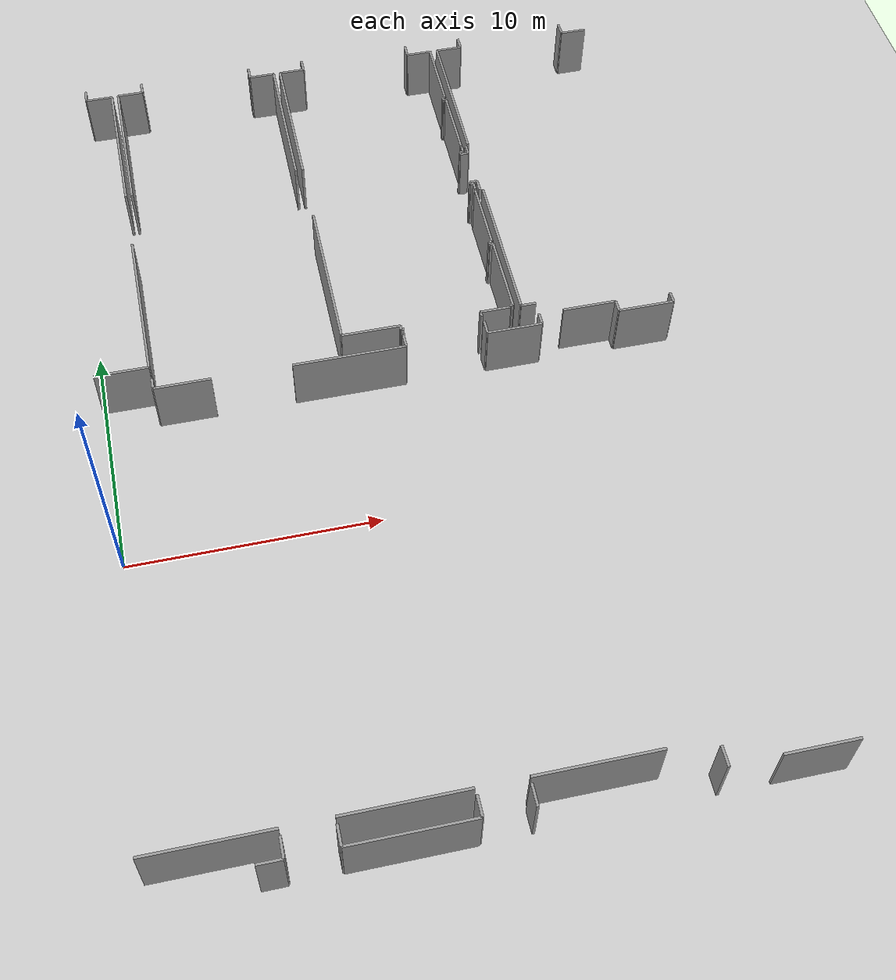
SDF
<sdf version="1.6">
 <world name="default">
  <model name="ground_plane">
   <static>1</static>
   <link name="link">
    <collision name="collision">
     <geometry><plane><normal>0 0 1</normal><size>100 100</size></plane></geometry>
     <surface><friction><ode><mu>100</mu><mu2>50</mu2></ode></friction></surface>
    </collision>
    <visual name="visual">
     <cast_shadows>0</cast_shadows>
     <geometry><plane><normal>0 0 1</normal><size>100 100</size></plane></geometry>
     <material>
      <script><uri>file://media/materials/scripts/gazebo.material</uri><name>Gazebo/Grey</name></script>
     </material>
    </visual>
   </link>
  </model>
  <model name="50045229">
   <static>1</static>
   <link name="Wall_10">
    <collision name="Wall_10_Collision">
     <geometry><box><size>0.32428384673 0.1 2.5</size></box></geometry>
     <pose>0.162141923365 0 1.25 0 0 0</pose>
    </collision>
    <visual name="Wall_10_Visual">
     <pose>0.162141923365 0 1.25 0 0 0</pose>
     <geometry><box><size>0.32428384673 0.1 2.5</size></box></geometry>
     <material>
      <script><uri>file://media/materials/scripts/gazebo.material</uri><name>Gazebo/Grey</name></script>
      <ambient>1 1 1 1</ambient>
     </material>
    </visual>
    <pose>63.8438106842 -7.00643490843 0 0 0 -1.57079632679</pose>
   </link>
   <link name="Wall_11">
    <collision name="Wall_11_Collision">
     <geometry><box><size>0.143928721014 0.1 2.5</size></box></geometry>
     <pose>0.0719643605072 0 1.25 0 0 0</pose>
    </collision>
    <visual name="Wall_11_Visual">
     <pose>0.0719643605072 0 1.25 0 0 0</pose>
     <geometry><box><size>0.143928721014 0.1 2.5</size></box></geometry>
     <material>
      <script><uri>file://media/materials/scripts/gazebo.material</uri><name>Gazebo/Grey</name></script>
      <ambient>1 1 1 1</ambient>
     </material>
    </visual>
    <pose>63.8438106842 -7.33071875516 0 0 0 3.14159265359</pose>
   </link>
   <link name="Wall_12">
    <collision name="Wall_12_Collision">
     <geometry><box><size>0.115117592557 0.1 2.5</size></box></geometry>
     <pose>0.0575587962787 0 1.25 0 0 0</pose>
    </collision>
    <visual name="Wall_12_Visual">
     <pose>0.0575587962787 0 1.25 0 0 0</pose>
     <geometry><box><size>0.115117592557 0.1 2.5</size></box></geometry>
     <material>
      <script><uri>file://media/materials/scripts/gazebo.material</uri><name>Gazebo/Grey</name></script>
      <ambient>1 1 1 1</ambient>
     </material>
    </visual>
    <pose>63.6998819632 -7.33071875516 0 0 0 -1.57079632679</pose>
   </link>
   <link name="Wall_13">
    <collision name="Wall_13_Collision">
     <geometry><box><size>0.345479698943 0.1 2.5</size></box></geometry>
     <pose>0.172739849471 0 1.25 0 0 0</pose>
    </collision>
    <visual name="Wall_13_Visual">
     <pose>0.172739849471 0 1.25 0 0 0</pose>
     <geometry><box><size>0.345479698943 0.1 2.5</size></box></geometry>
     <material>
      <script><uri>file://media/materials/scripts/gazebo.material</uri><name>Gazebo/Grey</name></script>
      <ambient>1 1 1 1</ambient>
     </material>
    </visual>
    <pose>63.6998819632 -7.44583634771 0 0 0 0.0</pose>
   </link>
   <link name="Wall_14">
    <collision name="Wall_14_Collision">
     <geometry><box><size>0.451078196195 0.1 2.5</size></box></geometry>
     <pose>0.225539098097 0 1.25 0 0 0</pose>
    </collision>
    <visual name="Wall_14_Visual">
     <pose>0.225539098097 0 1.25 0 0 0</pose>
     <geometry><box><size>0.451078196195 0.1 2.5</size></box></geometry>
     <material>
      <script><uri>file://media/materials/scripts/gazebo.material</uri><name>Gazebo/Grey</name></script>
      <ambient>1 1 1 1</ambient>
     </material>
    </visual>
    <pose>64.0453616622 -7.44583634771 0 0 0 1.57079632679</pose>
   </link>
   <link name="Wall_21">
    <collision name="Wall_21_Collision">
     <geometry><box><size>0.509461980733 0.1 2.5</size></box></geometry>
     <pose>0.254730990367 0 1.25 0 0 0</pose>
    </collision>
    <visual name="Wall_21_Visual">
     <pose>0.254730990367 0 1.25 0 0 0</pose>
     <geometry><box><size>0.509461980733 0.1 2.5</size></box></geometry>
     <material>
      <script><uri>file://media/materials/scripts/gazebo.material</uri><name>Gazebo/Grey</name></script>
      <ambient>1 1 1 1</ambient>
     </material>
    </visual>
    <pose>64.0317810862 -9.68193529554 0 0 0 1.57079632679</pose>
   </link>
   <link name="Wall_22">
    <collision name="Wall_22_Collision">
     <geometry><box><size>0.311972483469 0.1 2.5</size></box></geometry>
     <pose>0.155986241734 0 1.25 0 0 0</pose>
    </collision>
    <visual name="Wall_22_Visual">
     <pose>0.155986241734 0 1.25 0 0 0</pose>
     <geometry><box><size>0.311972483469 0.1 2.5</size></box></geometry>
     <material>
      <script><uri>file://media/materials/scripts/gazebo.material</uri><name>Gazebo/Grey</name></script>
      <ambient>1 1 1 1</ambient>
     </material>
    </visual>
    <pose>64.0317810862 -9.1724733148 0 0 0 3.14159265359</pose>
   </link>
   <link name="Wall_23">
    <collision name="Wall_23_Collision">
     <geometry><box><size>0.116132962723 0.1 2.5</size></box></geometry>
     <pose>0.0580664813616 0 1.25 0 0 0</pose>
    </collision>
    <visual name="Wall_23_Visual">
     <pose>0.0580664813616 0 1.25 0 0 0</pose>
     <geometry><box><size>0.116132962723 0.1 2.5</size></box></geometry>
     <material>
      <script><uri>file://media/materials/scripts/gazebo.material</uri><name>Gazebo/Grey</name></script>
      <ambient>1 1 1 1</ambient>
     </material>
    </visual>
    <pose>63.7198086027 -9.1724733148 0 0 0 -1.57079632679</pose>
   </link>
   <link name="Wall_24">
    <collision name="Wall_24_Collision">
     <geometry><box><size>0.130601987587 0.1 2.5</size></box></geometry>
     <pose>0.0653009937935 0 1.25 0 0 0</pose>
    </collision>
    <visual name="Wall_24_Visual">
     <pose>0.0653009937935 0 1.25 0 0 0</pose>
     <geometry><box><size>0.130601987587 0.1 2.5</size></box></geometry>
     <material>
      <script><uri>file://media/materials/scripts/gazebo.material</uri><name>Gazebo/Grey</name></script>
      <ambient>1 1 1 1</ambient>
     </material>
    </visual>
    <pose>63.7198086027 -9.28860627753 0 0 0 0.0</pose>
   </link>
   <link name="Wall_25">
    <collision name="Wall_25_Collision">
     <geometry><box><size>0.341037454467 0.1 2.5</size></box></geometry>
     <pose>0.170518727233 0 1.25 0 0 0</pose>
    </collision>
    <visual name="Wall_25_Visual">
     <pose>0.170518727233 0 1.25 0 0 0</pose>
     <geometry><box><size>0.341037454467 0.1 2.5</size></box></geometry>
     <material>
      <script><uri>file://media/materials/scripts/gazebo.material</uri><name>Gazebo/Grey</name></script>
      <ambient>1 1 1 1</ambient>
     </material>
    </visual>
    <pose>63.8504105903 -9.28860627753 0 0 0 -1.57079632679</pose>
   </link>
   <link name="Wall_57">
    <collision name="Wall_57_Collision">
     <geometry><box><size>0.587137798424 0.1 2.5</size></box></geometry>
     <pose>0.293568899212 0 1.25 0 0 0</pose>
    </collision>
    <visual name="Wall_57_Visual">
     <pose>0.293568899212 0 1.25 0 0 0</pose>
     <geometry><box><size>0.587137798424 0.1 2.5</size></box></geometry>
     <material>
      <script><uri>file://media/materials/scripts/gazebo.material</uri><name>Gazebo/Grey</name></script>
      <ambient>1 1 1 1</ambient>
     </material>
    </visual>
    <pose>47.8499536737 -0.0199266395055 0 0 0 -1.57079632679</pose>
   </link>
   <link name="Wall_58">
    <collision name="Wall_58_Collision">
     <geometry><box><size>1.14686060237 0.1 2.5</size></box></geometry>
     <pose>0.573430301184 0 1.25 0 0 0</pose>
    </collision>
    <visual name="Wall_58_Visual">
     <pose>0.573430301184 0 1.25 0 0 0</pose>
     <geometry><box><size>1.14686060237 0.1 2.5</size></box></geometry>
     <material>
      <script><uri>file://media/materials/scripts/gazebo.material</uri><name>Gazebo/Grey</name></script>
      <ambient>1 1 1 1</ambient>
     </material>
    </visual>
    <pose>47.8499536737 -0.607064437929 0 0 0 0.0</pose>
   </link>
   <link name="Wall_59">
    <collision name="Wall_59_Collision">
     <geometry><box><size>6.32312463092 0.1 2.5</size></box></geometry>
     <pose>3.16156231546 0 1.25 0 0 0</pose>
    </collision>
    <visual name="Wall_59_Visual">
     <pose>3.16156231546 0 1.25 0 0 0</pose>
     <geometry><box><size>6.32312463092 0.1 2.5</size></box></geometry>
     <material>
      <script><uri>file://media/materials/scripts/gazebo.material</uri><name>Gazebo/Grey</name></script>
      <ambient>1 1 1 1</ambient>
     </material>
    </visual>
    <pose>48.9968142761 -0.607064437929 0 0 0 -1.56752449439</pose>
   </link>
   <link name="Wall_60">
    <collision name="Wall_60_Collision">
     <geometry><box><size>6.33197527574 0.1 2.5</size></box></geometry>
     <pose>3.16598763787 0 1.25 0 0 0</pose>
    </collision>
    <visual name="Wall_60_Visual">
     <pose>3.16598763787 0 1.25 0 0 0</pose>
     <geometry><box><size>6.33197527574 0.1 2.5</size></box></geometry>
     <material>
      <script><uri>file://media/materials/scripts/gazebo.material</uri><name>Gazebo/Grey</name></script>
      <ambient>1 1 1 1</ambient>
     </material>
    </visual>
    <pose>56.4377006943 -6.93383594157 0 0 0 1.57079632679</pose>
   </link>
   <link name="Wall_61">
    <collision name="Wall_61_Collision">
     <geometry><box><size>1.09444211755 0.1 2.5</size></box></geometry>
     <pose>0.547221058777 0 1.25 0 0 0</pose>
    </collision>
    <visual name="Wall_61_Visual">
     <pose>0.547221058777 0 1.25 0 0 0</pose>
     <geometry><box><size>1.09444211755 0.1 2.5</size></box></geometry>
     <material>
      <script><uri>file://media/materials/scripts/gazebo.material</uri><name>Gazebo/Grey</name></script>
      <ambient>1 1 1 1</ambient>
     </material>
    </visual>
    <pose>56.4377006943 -0.601860665829 0 0 0 3.14159265359</pose>
   </link>
   <link name="Wall_62">
    <collision name="Wall_62_Collision">
     <geometry><box><size>0.575714884057 0.1 2.5</size></box></geometry>
     <pose>0.287857442029 0 1.25 0 0 0</pose>
    </collision>
    <visual name="Wall_62_Visual">
     <pose>0.287857442029 0 1.25 0 0 0</pose>
     <geometry><box><size>0.575714884057 0.1 2.5</size></box></geometry>
     <material>
      <script><uri>file://media/materials/scripts/gazebo.material</uri><name>Gazebo/Grey</name></script>
      <ambient>1 1 1 1</ambient>
     </material>
    </visual>
    <pose>55.3432585767 -0.601860665829 0 0 0 1.57079632679</pose>
   </link>
   <link name="Wall_63">
    <collision name="Wall_63_Collision">
     <geometry><box><size>0.553503661679 0.1 2.5</size></box></geometry>
     <pose>0.276751830839 0 1.25 0 0 0</pose>
    </collision>
    <visual name="Wall_63_Visual">
     <pose>0.276751830839 0 1.25 0 0 0</pose>
     <geometry><box><size>0.553503661679 0.1 2.5</size></box></geometry>
     <material>
      <script><uri>file://media/materials/scripts/gazebo.material</uri><name>Gazebo/Grey</name></script>
      <ambient>1 1 1 1</ambient>
     </material>
    </visual>
    <pose>50.3877444821 -0.0261457817716 0 0 0 -1.57079632679</pose>
   </link>
   <link name="Wall_64">
    <collision name="Wall_64_Collision">
     <geometry><box><size>1.10764192971 0.1 2.5</size></box></geometry>
     <pose>0.553820964856 0 1.25 0 0 0</pose>
    </collision>
    <visual name="Wall_64_Visual">
     <pose>0.553820964856 0 1.25 0 0 0</pose>
     <geometry><box><size>1.10764192971 0.1 2.5</size></box></geometry>
     <material>
      <script><uri>file://media/materials/scripts/gazebo.material</uri><name>Gazebo/Grey</name></script>
      <ambient>1 1 1 1</ambient>
     </material>
    </visual>
    <pose>50.3877444821 -0.57964944345 0 0 0 3.14159265359</pose>
   </link>
   <link name="Wall_65">
    <collision name="Wall_65_Collision">
     <geometry><box><size>6.34454048154 0.1 2.5</size></box></geometry>
     <pose>3.17227024077 0 1.25 0 0 0</pose>
    </collision>
    <visual name="Wall_65_Visual">
     <pose>3.17227024077 0 1.25 0 0 0</pose>
     <geometry><box><size>6.34454048154 0.1 2.5</size></box></geometry>
     <material>
      <script><uri>file://media/materials/scripts/gazebo.material</uri><name>Gazebo/Grey</name></script>
      <ambient>1 1 1 1</ambient>
     </material>
    </visual>
    <pose>49.2801025524 -0.57964944345 0 0 0 -1.57079632679</pose>
   </link>
   <link name="Wall_66">
    <collision name="Wall_66_Collision">
     <geometry><box><size>6.34238281994 0.1 2.5</size></box></geometry>
     <pose>3.17119140997 0 1.25 0 0 0</pose>
    </collision>
    <visual name="Wall_66_Visual">
     <pose>3.17119140997 0 1.25 0 0 0</pose>
     <geometry><box><size>6.34238281994 0.1 2.5</size></box></geometry>
     <material>
      <script><uri>file://media/materials/scripts/gazebo.material</uri><name>Gazebo/Grey</name></script>
      <ambient>1 1 1 1</ambient>
     </material>
    </visual>
    <pose>56.7369810507 -6.93599360317 0 0 0 1.57079632679</pose>
   </link>
   <link name="Wall_67">
    <collision name="Wall_67_Collision">
     <geometry><box><size>1.09317290485 0.1 2.5</size></box></geometry>
     <pose>0.546586452424 0 1.25 0 0 0</pose>
    </collision>
    <visual name="Wall_67_Visual">
     <pose>0.546586452424 0 1.25 0 0 0</pose>
     <geometry><box><size>1.09317290485 0.1 2.5</size></box></geometry>
     <material>
      <script><uri>file://media/materials/scripts/gazebo.material</uri><name>Gazebo/Grey</name></script>
      <ambient>1 1 1 1</ambient>
     </material>
    </visual>
    <pose>56.7369810507 -0.593610783231 0 0 0 0.0</pose>
   </link>
   <link name="Wall_68">
    <collision name="Wall_68_Collision">
     <geometry><box><size>0.575841805328 0.1 2.5</size></box></geometry>
     <pose>0.287920902664 0 1.25 0 0 0</pose>
    </collision>
    <visual name="Wall_68_Visual">
     <pose>0.287920902664 0 1.25 0 0 0</pose>
     <geometry><box><size>0.575841805328 0.1 2.5</size></box></geometry>
     <material>
      <script><uri>file://media/materials/scripts/gazebo.material</uri><name>Gazebo/Grey</name></script>
      <ambient>1 1 1 1</ambient>
     </material>
    </visual>
    <pose>57.8301539555 -0.593610783231 0 0 0 1.57079632679</pose>
   </link>
   <link name="Wall_69">
    <collision name="Wall_69_Collision">
     <geometry><box><size>0.583837845385 0.1 2.5</size></box></geometry>
     <pose>0.291918922692 0 1.25 0 0 0</pose>
    </collision>
    <visual name="Wall_69_Visual">
     <pose>0.291918922692 0 1.25 0 0 0</pose>
     <geometry><box><size>0.583837845385 0.1 2.5</size></box></geometry>
     <material>
      <script><uri>file://media/materials/scripts/gazebo.material</uri><name>Gazebo/Grey</name></script>
      <ambient>1 1 1 1</ambient>
     </material>
    </visual>
    <pose>62.7407379203 -0.017768977903 0 0 0 -1.57079632679</pose>
   </link>
   <link name="Wall_70">
    <collision name="Wall_70_Collision">
     <geometry><box><size>1.08238459683 0.1 2.5</size></box></geometry>
     <pose>0.541192298417 0 1.25 0 0 0</pose>
    </collision>
    <visual name="Wall_70_Visual">
     <pose>0.541192298417 0 1.25 0 0 0</pose>
     <geometry><box><size>1.08238459683 0.1 2.5</size></box></geometry>
     <material>
      <script><uri>file://media/materials/scripts/gazebo.material</uri><name>Gazebo/Grey</name></script>
      <ambient>1 1 1 1</ambient>
     </material>
    </visual>
    <pose>62.7407379203 -0.601606823288 0 0 0 0.0</pose>
   </link>
   <link name="Wall_71">
    <collision name="Wall_71_Collision">
     <geometry><box><size>3.15513586922 0.1 2.5</size></box></geometry>
     <pose>1.57756793461 0 1.25 0 0 0</pose>
    </collision>
    <visual name="Wall_71_Visual">
     <pose>1.57756793461 0 1.25 0 0 0</pose>
     <geometry><box><size>3.15513586922 0.1 2.5</size></box></geometry>
     <material>
      <script><uri>file://media/materials/scripts/gazebo.material</uri><name>Gazebo/Grey</name></script>
      <ambient>1 1 1 1</ambient>
     </material>
    </visual>
    <pose>63.8231225171 -0.601606823288 0 0 0 -1.57079632679</pose>
   </link>
   <link name="Wall_72">
    <collision name="Wall_72_Collision">
     <geometry><box><size>0.0932871339908 0.1 2.5</size></box></geometry>
     <pose>0.0466435669954 0 1.25 0 0 0</pose>
    </collision>
    <visual name="Wall_72_Visual">
     <pose>0.0466435669954 0 1.25 0 0 0</pose>
     <geometry><box><size>0.0932871339908 0.1 2.5</size></box></geometry>
     <material>
      <script><uri>file://media/materials/scripts/gazebo.material</uri><name>Gazebo/Grey</name></script>
      <ambient>1 1 1 1</ambient>
     </material>
    </visual>
    <pose>63.8231225171 -3.75674269251 0 0 0 3.14159265359</pose>
   </link>
   <link name="Wall_73">
    <collision name="Wall_73_Collision">
     <geometry><box><size>0.159159273503 0.1 2.5</size></box></geometry>
     <pose>0.0795796367513 0 1.25 0 0 0</pose>
    </collision>
    <visual name="Wall_73_Visual">
     <pose>0.0795796367513 0 1.25 0 0 0</pose>
     <geometry><box><size>0.159159273503 0.1 2.5</size></box></geometry>
     <material>
      <script><uri>file://media/materials/scripts/gazebo.material</uri><name>Gazebo/Grey</name></script>
      <ambient>1 1 1 1</ambient>
     </material>
    </visual>
    <pose>63.7298353831 -3.75674269251 0 0 0 -1.57079632679</pose>
   </link>
   <link name="Wall_74">
    <collision name="Wall_74_Collision">
     <geometry><box><size>0.109659977916 0.1 2.5</size></box></geometry>
     <pose>0.0548299889578 0 1.25 0 0 0</pose>
    </collision>
    <visual name="Wall_74_Visual">
     <pose>0.0548299889578 0 1.25 0 0 0</pose>
     <geometry><box><size>0.109659977916 0.1 2.5</size></box></geometry>
     <material>
      <script><uri>file://media/materials/scripts/gazebo.material</uri><name>Gazebo/Grey</name></script>
      <ambient>1 1 1 1</ambient>
     </material>
    </visual>
    <pose>63.7298353831 -3.91590196601 0 0 0 0.0</pose>
   </link>
   <link name="Wall_75">
    <collision name="Wall_75_Collision">
     <geometry><box><size>3.02288390511 0.1 2.5</size></box></geometry>
     <pose>1.51144195256 0 1.25 0 0 0</pose>
    </collision>
    <visual name="Wall_75_Visual">
     <pose>1.51144195256 0 1.25 0 0 0</pose>
     <geometry><box><size>3.02288390511 0.1 2.5</size></box></geometry>
     <material>
      <script><uri>file://media/materials/scripts/gazebo.material</uri><name>Gazebo/Grey</name></script>
      <ambient>1 1 1 1</ambient>
     </material>
    </visual>
    <pose>63.839495361 -3.91590196601 0 0 0 -1.57079632679</pose>
   </link>
   <link name="Wall_76">
    <collision name="Wall_76_Collision">
     <geometry><box><size>6.32423307822 0.1 2.5</size></box></geometry>
     <pose>3.16211653911 0 1.25 0 0 0</pose>
    </collision>
    <visual name="Wall_76_Visual">
     <pose>3.16211653911 0 1.25 0 0 0</pose>
     <geometry><box><size>6.32423307822 0.1 2.5</size></box></geometry>
     <material>
      <script><uri>file://media/materials/scripts/gazebo.material</uri><name>Gazebo/Grey</name></script>
      <ambient>1 1 1 1</ambient>
     </material>
    </visual>
    <pose>64.155910089 -6.91923999543 0 0 0 1.57079632679</pose>
   </link>
   <link name="Wall_77">
    <collision name="Wall_77_Collision">
     <geometry><box><size>1.12401477364 0.1 2.5</size></box></geometry>
     <pose>0.562007386818 0 1.25 0 0 0</pose>
    </collision>
    <visual name="Wall_77_Visual">
     <pose>0.562007386818 0 1.25 0 0 0</pose>
     <geometry><box><size>1.12401477364 0.1 2.5</size></box></geometry>
     <material>
      <script><uri>file://media/materials/scripts/gazebo.material</uri><name>Gazebo/Grey</name></script>
      <ambient>1 1 1 1</ambient>
     </material>
    </visual>
    <pose>64.155910089 -0.595006917209 0 0 0 0.0</pose>
   </link>
   <link name="Wall_78">
    <collision name="Wall_78_Collision">
     <geometry><box><size>0.580537892345 0.1 2.5</size></box></geometry>
     <pose>0.290268946173 0 1.25 0 0 0</pose>
    </collision>
    <visual name="Wall_78_Visual">
     <pose>0.290268946173 0 1.25 0 0 0</pose>
     <geometry><box><size>0.580537892345 0.1 2.5</size></box></geometry>
     <material>
      <script><uri>file://media/materials/scripts/gazebo.material</uri><name>Gazebo/Grey</name></script>
      <ambient>1 1 1 1</ambient>
     </material>
    </visual>
    <pose>65.2799248626 -0.595006917209 0 0 0 1.57079632679</pose>
   </link>
   <link name="Wall_79">
    <collision name="Wall_79_Collision">
     <geometry><box><size>0.587772404777 0.1 2.5</size></box></geometry>
     <pose>0.293886202389 0 1.25 0 0 0</pose>
    </collision>
    <visual name="Wall_79_Visual">
     <pose>0.293886202389 0 1.25 0 0 0</pose>
     <geometry><box><size>0.587772404777 0.1 2.5</size></box></geometry>
     <material>
      <script><uri>file://media/materials/scripts/gazebo.material</uri><name>Gazebo/Grey</name></script>
      <ambient>1 1 1 1</ambient>
     </material>
    </visual>
    <pose>70.1783243854 -0.0144690248639 0 0 0 -1.57079632679</pose>
   </link>
   <link name="Wall_80">
    <collision name="Wall_80_Collision">
     <geometry><box><size>1.13201081369 0.1 2.5</size></box></geometry>
     <pose>0.566005406846 0 1.25 0 0 0</pose>
    </collision>
    <visual name="Wall_80_Visual">
     <pose>0.566005406846 0 1.25 0 0 0</pose>
     <geometry><box><size>1.13201081369 0.1 2.5</size></box></geometry>
     <material>
      <script><uri>file://media/materials/scripts/gazebo.material</uri><name>Gazebo/Grey</name></script>
      <ambient>1 1 1 1</ambient>
     </material>
    </visual>
    <pose>70.1783243854 -0.602241429641 0 0 0 0.0</pose>
   </link>
   <link name="Wall_107">
    <collision name="Wall_107_Collision">
     <geometry><box><size>6.6218634581 0.1 2.5</size></box></geometry>
     <pose>3.31093172905 0 1.25 0 0 0</pose>
    </collision>
    <visual name="Wall_107_Visual">
     <pose>3.31093172905 0 1.25 0 0 0</pose>
     <geometry><box><size>6.6218634581 0.1 2.5</size></box></geometry>
     <material>
      <script><uri>file://media/materials/scripts/gazebo.material</uri><name>Gazebo/Grey</name></script>
      <ambient>1 1 1 1</ambient>
     </material>
    </visual>
    <pose>64.1604792547 -16.3519019152 0 0 0 1.57079632679</pose>
   </link>
   <link name="Wall_110">
    <collision name="Wall_110_Collision">
     <geometry><box><size>0.622045343178 0.1 2.5</size></box></geometry>
     <pose>0.311022671589 0 1.25 0 0 0</pose>
    </collision>
    <visual name="Wall_110_Visual">
     <pose>0.311022671589 0 1.25 0 0 0</pose>
     <geometry><box><size>0.622045343178 0.1 2.5</size></box></geometry>
     <material>
      <script><uri>file://media/materials/scripts/gazebo.material</uri><name>Gazebo/Grey</name></script>
      <ambient>1 1 1 1</ambient>
     </material>
    </visual>
    <pose>64.7825204026 -16.3541864981 0 0 0 3.13791995025</pose>
   </link>
   <link name="Wall_111">
    <collision name="Wall_111_Collision">
     <geometry><box><size>6.66019368186 0.1 2.5</size></box></geometry>
     <pose>3.33009684093 0 1.25 0 0 0</pose>
    </collision>
    <visual name="Wall_111_Visual">
     <pose>3.33009684093 0 1.25 0 0 0</pose>
     <geometry><box><size>6.66019368186 0.1 2.5</size></box></geometry>
     <material>
      <script><uri>file://media/materials/scripts/gazebo.material</uri><name>Gazebo/Grey</name></script>
      <ambient>1 1 1 1</ambient>
     </material>
    </visual>
    <pose>56.7300003808 -16.3624363807 0 0 0 1.57079632679</pose>
   </link>
   <link name="Wall_112">
    <collision name="Wall_112_Collision">
     <geometry><box><size>3.00841488025 0.1 2.5</size></box></geometry>
     <pose>1.50420744012 0 1.25 0 0 0</pose>
    </collision>
    <visual name="Wall_112_Visual">
     <pose>1.50420744012 0 1.25 0 0 0</pose>
     <geometry><box><size>3.00841488025 0.1 2.5</size></box></geometry>
     <material>
      <script><uri>file://media/materials/scripts/gazebo.material</uri><name>Gazebo/Grey</name></script>
      <ambient>1 1 1 1</ambient>
     </material>
    </visual>
    <pose>63.8341646677 -9.70224269885 0 0 0 -1.57079632679</pose>
   </link>
   <link name="Wall_113">
    <collision name="Wall_113_Collision">
     <geometry><box><size>0.127936640902 0.1 2.5</size></box></geometry>
     <pose>0.0639683204508 0 1.25 0 0 0</pose>
    </collision>
    <visual name="Wall_113_Visual">
     <pose>0.0639683204508 0 1.25 0 0 0</pose>
     <geometry><box><size>0.127936640902 0.1 2.5</size></box></geometry>
     <material>
      <script><uri>file://media/materials/scripts/gazebo.material</uri><name>Gazebo/Grey</name></script>
      <ambient>1 1 1 1</ambient>
     </material>
    </visual>
    <pose>63.8341646677 -12.7106575791 0 0 0 3.14159265359</pose>
   </link>
   <link name="Wall_114">
    <collision name="Wall_114_Collision">
     <geometry><box><size>0.151417075988 0.1 2.5</size></box></geometry>
     <pose>0.0757085379939 0 1.25 0 0 0</pose>
    </collision>
    <visual name="Wall_114_Visual">
     <pose>0.0757085379939 0 1.25 0 0 0</pose>
     <geometry><box><size>0.151417075988 0.1 2.5</size></box></geometry>
     <material>
      <script><uri>file://media/materials/scripts/gazebo.material</uri><name>Gazebo/Grey</name></script>
      <ambient>1 1 1 1</ambient>
     </material>
    </visual>
    <pose>63.7062280268 -12.7106575791 0 0 0 -1.57079632679</pose>
   </link>
   <link name="Wall_115">
    <collision name="Wall_115_Collision">
     <geometry><box><size>0.145071012451 0.1 2.5</size></box></geometry>
     <pose>0.0725355062255 0 1.25 0 0 0</pose>
    </collision>
    <visual name="Wall_115_Visual">
     <pose>0.0725355062255 0 1.25 0 0 0</pose>
     <geometry><box><size>0.145071012451 0.1 2.5</size></box></geometry>
     <material>
      <script><uri>file://media/materials/scripts/gazebo.material</uri><name>Gazebo/Grey</name></script>
      <ambient>1 1 1 1</ambient>
     </material>
    </visual>
    <pose>63.7062280268 -12.8620746551 0 0 0 0.0</pose>
   </link>
   <link name="Wall_116">
    <collision name="Wall_116_Collision">
     <geometry><box><size>3.40491693003 0.1 2.5</size></box></geometry>
     <pose>1.70245846501 0 1.25 0 0 0</pose>
    </collision>
    <visual name="Wall_116_Visual">
     <pose>1.70245846501 0 1.25 0 0 0</pose>
     <geometry><box><size>3.40491693003 0.1 2.5</size></box></geometry>
     <material>
      <script><uri>file://media/materials/scripts/gazebo.material</uri><name>Gazebo/Grey</name></script>
      <ambient>1 1 1 1</ambient>
     </material>
    </visual>
    <pose>63.8512990392 -12.8620746551 0 0 0 -1.57079632679</pose>
   </link>
   <link name="Wall_117">
    <collision name="Wall_117_Collision">
     <geometry><box><size>0.133648098085 0.1 2.5</size></box></geometry>
     <pose>0.0668240490424 0 1.25 0 0 0</pose>
    </collision>
    <visual name="Wall_117_Visual">
     <pose>0.0668240490424 0 1.25 0 0 0</pose>
     <geometry><box><size>0.133648098085 0.1 2.5</size></box></geometry>
     <material>
      <script><uri>file://media/materials/scripts/gazebo.material</uri><name>Gazebo/Grey</name></script>
      <ambient>1 1 1 1</ambient>
     </material>
    </visual>
    <pose>63.8512990392 -16.2669915851 0 0 0 3.14159265359</pose>
   </link>
   <link name="Wall_118">
    <collision name="Wall_118_Collision">
     <geometry><box><size>0.071583596695 0.1 2.5</size></box></geometry>
     <pose>0.0357917983475 0 1.25 0 0 0</pose>
    </collision>
    <visual name="Wall_118_Visual">
     <pose>0.0357917983475 0 1.25 0 0 0</pose>
     <geometry><box><size>0.071583596695 0.1 2.5</size></box></geometry>
     <material>
      <script><uri>file://media/materials/scripts/gazebo.material</uri><name>Gazebo/Grey</name></script>
      <ambient>1 1 1 1</ambient>
     </material>
    </visual>
    <pose>63.7176509411 -16.2669915851 0 0 0 -1.57079632679</pose>
   </link>
   <link name="Wall_119">
    <collision name="Wall_119_Collision">
     <geometry><box><size>1.25017451675 0.1 2.5</size></box></geometry>
     <pose>0.625087258374 0 1.25 0 0 0</pose>
    </collision>
    <visual name="Wall_119_Visual">
     <pose>0.625087258374 0 1.25 0 0 0</pose>
     <geometry><box><size>1.25017451675 0.1 2.5</size></box></geometry>
     <material>
      <script><uri>file://media/materials/scripts/gazebo.material</uri><name>Gazebo/Grey</name></script>
      <ambient>1 1 1 1</ambient>
     </material>
    </visual>
    <pose>63.7176509411 -16.3385751818 0 0 0 3.14159265359</pose>
   </link>
   <link name="Wall_120">
    <collision name="Wall_120_Collision">
     <geometry><box><size>0.22426988539 0.1 2.5</size></box></geometry>
     <pose>0.112134942695 0 1.25 0 0 0</pose>
    </collision>
    <visual name="Wall_120_Visual">
     <pose>0.112134942695 0 1.25 0 0 0</pose>
     <geometry><box><size>0.22426988539 0.1 2.5</size></box></geometry>
     <material>
      <script><uri>file://media/materials/scripts/gazebo.material</uri><name>Gazebo/Grey</name></script>
      <ambient>1 1 1 1</ambient>
     </material>
    </visual>
    <pose>62.4674764244 -16.3385751818 0 0 0 -1.57079632679</pose>
   </link>
   <link name="Wall_121">
    <collision name="Wall_121_Collision">
     <geometry><box><size>0.126921270736 0.1 2.5</size></box></geometry>
     <pose>0.0634606353679 0 1.25 0 0 0</pose>
    </collision>
    <visual name="Wall_121_Visual">
     <pose>0.0634606353679 0 1.25 0 0 0</pose>
     <geometry><box><size>0.126921270736 0.1 2.5</size></box></geometry>
     <material>
      <script><uri>file://media/materials/scripts/gazebo.material</uri><name>Gazebo/Grey</name></script>
      <ambient>1 1 1 1</ambient>
     </material>
    </visual>
    <pose>59.2614451256 -16.5628450672 0 0 0 3.14159265359</pose>
   </link>
   <link name="Wall_122">
    <collision name="Wall_122_Collision">
     <geometry><box><size>0.195966442016 0.1 2.5</size></box></geometry>
     <pose>0.097983221008 0 1.25 0 0 0</pose>
    </collision>
    <visual name="Wall_122_Visual">
     <pose>0.097983221008 0 1.25 0 0 0</pose>
     <geometry><box><size>0.195966442016 0.1 2.5</size></box></geometry>
     <material>
      <script><uri>file://media/materials/scripts/gazebo.material</uri><name>Gazebo/Grey</name></script>
      <ambient>1 1 1 1</ambient>
     </material>
    </visual>
    <pose>59.1345238549 -16.5628450672 0 0 0 1.57079632679</pose>
   </link>
   <link name="Wall_123">
    <collision name="Wall_123_Collision">
     <geometry><box><size>2.4045275775 0.1 2.5</size></box></geometry>
     <pose>1.20226378875 0 1.25 0 0 0</pose>
    </collision>
    <visual name="Wall_123_Visual">
     <pose>1.20226378875 0 1.25 0 0 0</pose>
     <geometry><box><size>2.4045275775 0.1 2.5</size></box></geometry>
     <material>
      <script><uri>file://media/materials/scripts/gazebo.material</uri><name>Gazebo/Grey</name></script>
      <ambient>1 1 1 1</ambient>
     </material>
    </visual>
    <pose>59.1345238549 -16.3668786252 0 0 0 3.13974520254</pose>
   </link>
   <link name="Wall_125">
    <collision name="Wall_125_Collision">
     <geometry><box><size>6.62643262384 0.1 2.5</size></box></geometry>
     <pose>3.31321631192 0 1.25 0 0 0</pose>
    </collision>
    <visual name="Wall_125_Visual">
     <pose>3.31321631192 0 1.25 0 0 0</pose>
     <geometry><box><size>6.62643262384 0.1 2.5</size></box></geometry>
     <material>
      <script><uri>file://media/materials/scripts/gazebo.material</uri><name>Gazebo/Grey</name></script>
      <ambient>1 1 1 1</ambient>
     </material>
    </visual>
    <pose>49.0092525606 -9.73130766985 0 0 0 -1.57079632679</pose>
   </link>
   <link name="Wall_126">
    <collision name="Wall_126_Collision">
     <geometry><box><size>2.18647273096 0.1 2.5</size></box></geometry>
     <pose>1.09323636548 0 1.25 0 0 0</pose>
    </collision>
    <visual name="Wall_126_Visual">
     <pose>1.09323636548 0 1.25 0 0 0</pose>
     <geometry><box><size>2.18647273096 0.1 2.5</size></box></geometry>
     <material>
      <script><uri>file://media/materials/scripts/gazebo.material</uri><name>Gazebo/Grey</name></script>
      <ambient>1 1 1 1</ambient>
     </material>
    </visual>
    <pose>49.0092525606 -16.3577402937 0 0 0 3.14159265359</pose>
   </link>
   <link name="Wall_277">
    <collision name="Wall_277_Collision">
     <geometry><box><size>0.926525276371 0.1 2.5</size></box></geometry>
     <pose>0.463262638186 0 1.25 0 0 0</pose>
    </collision>
    <visual name="Wall_277_Visual">
     <pose>0.463262638186 0 1.25 0 0 0</pose>
     <geometry><box><size>0.926525276371 0.1 2.5</size></box></geometry>
     <material>
      <script><uri>file://media/materials/scripts/gazebo.material</uri><name>Gazebo/Grey</name></script>
      <ambient>1 1 1 1</ambient>
     </material>
    </visual>
    <pose>50.1992663951 -36.8211298532 0 0 0 0.0</pose>
   </link>
   <link name="Wall_278">
    <collision name="Wall_278_Collision">
     <geometry><box><size>0.768762136847 0.1 2.5</size></box></geometry>
     <pose>0.384381068423 0 1.25 0 0 0</pose>
    </collision>
    <visual name="Wall_278_Visual">
     <pose>0.384381068423 0 1.25 0 0 0</pose>
     <geometry><box><size>0.768762136847 0.1 2.5</size></box></geometry>
     <material>
      <script><uri>file://media/materials/scripts/gazebo.material</uri><name>Gazebo/Grey</name></script>
      <ambient>1 1 1 1</ambient>
     </material>
    </visual>
    <pose>51.1257916714 -36.8211298532 0 0 0 1.57079632679</pose>
   </link>
   <link name="Wall_279">
    <collision name="Wall_279_Collision">
     <geometry><box><size>0.761527624415 0.1 2.5</size></box></geometry>
     <pose>0.380763812207 0 1.25 0 0 0</pose>
    </collision>
    <visual name="Wall_279_Visual">
     <pose>0.380763812207 0 1.25 0 0 0</pose>
     <geometry><box><size>0.761527624415 0.1 2.5</size></box></geometry>
     <material>
      <script><uri>file://media/materials/scripts/gazebo.material</uri><name>Gazebo/Grey</name></script>
      <ambient>1 1 1 1</ambient>
     </material>
    </visual>
    <pose>52.9915343512 -36.0523677163 0 0 0 -1.57079632679</pose>
   </link>
   <link name="Wall_280">
    <collision name="Wall_280_Collision">
     <geometry><box><size>4.63262638186 0.1 2.5</size></box></geometry>
     <pose>2.31631319093 0 1.25 0 0 0</pose>
    </collision>
    <visual name="Wall_280_Visual">
     <pose>2.31631319093 0 1.25 0 0 0</pose>
     <geometry><box><size>4.63262638186 0.1 2.5</size></box></geometry>
     <material>
      <script><uri>file://media/materials/scripts/gazebo.material</uri><name>Gazebo/Grey</name></script>
      <ambient>1 1 1 1</ambient>
     </material>
    </visual>
    <pose>52.9915343512 -36.8138953407 0 0 0 0.0</pose>
   </link>
   <link name="Wall_281">
    <collision name="Wall_281_Collision">
     <geometry><box><size>0.787927248728 0.1 2.5</size></box></geometry>
     <pose>0.393963624364 0 1.25 0 0 0</pose>
    </collision>
    <visual name="Wall_281_Visual">
     <pose>0.393963624364 0 1.25 0 0 0</pose>
     <geometry><box><size>0.787927248728 0.1 2.5</size></box></geometry>
     <material>
      <script><uri>file://media/materials/scripts/gazebo.material</uri><name>Gazebo/Grey</name></script>
      <ambient>1 1 1 1</ambient>
     </material>
    </visual>
    <pose>57.6241607331 -36.8138953407 0 0 0 1.57079632679</pose>
   </link>
   <link name="Wall_282">
    <collision name="Wall_282_Collision">
     <geometry><box><size>0.816611455914 0.1 2.5</size></box></geometry>
     <pose>0.408305727957 0 1.25 0 0 0</pose>
    </collision>
    <visual name="Wall_282_Visual">
     <pose>0.408305727957 0 1.25 0 0 0</pose>
     <geometry><box><size>0.816611455914 0.1 2.5</size></box></geometry>
     <material>
      <script><uri>file://media/materials/scripts/gazebo.material</uri><name>Gazebo/Grey</name></script>
      <ambient>1 1 1 1</ambient>
     </material>
    </visual>
    <pose>59.4673114267 -36.025968092 0 0 0 -1.57079632679</pose>
   </link>
   <link name="Wall_285">
    <collision name="Wall_285_Collision">
     <geometry><box><size>0.761527624415 0.1 2.5</size></box></geometry>
     <pose>0.380763812207 0 1.25 0 0 0</pose>
    </collision>
    <visual name="Wall_285_Visual">
     <pose>0.380763812207 0 1.25 0 0 0</pose>
     <geometry><box><size>0.761527624415 0.1 2.5</size></box></geometry>
     <material>
      <script><uri>file://media/materials/scripts/gazebo.material</uri><name>Gazebo/Grey</name></script>
      <ambient>1 1 1 1</ambient>
     </material>
    </visual>
    <pose>65.9755803475 -36.0777519705 0 0 0 -1.57079632679</pose>
   </link>
   <link name="Wall_304">
    <collision name="Wall_304_Collision">
     <geometry><box><size>2.77754508878 0.1 2.5</size></box></geometry>
     <pose>1.38877254439 0 1.25 0 0 0</pose>
    </collision>
    <visual name="Wall_304_Visual">
     <pose>1.38877254439 0 1.25 0 0 0</pose>
     <geometry><box><size>2.77754508878 0.1 2.5</size></box></geometry>
     <material>
      <script><uri>file://media/materials/scripts/gazebo.material</uri><name>Gazebo/Grey</name></script>
      <ambient>1 1 1 1</ambient>
     </material>
    </visual>
    <pose>67.8863800784 -36.799045552 0 0 0 0.0</pose>
   </link>
   <link name="Wall_410">
    <collision name="Wall_410_Collision">
     <geometry><box><size>0.49854675145 0.1 2.5</size></box></geometry>
     <pose>0.249273375725 0 1.25 0 0 0</pose>
    </collision>
    <visual name="Wall_410_Visual">
     <pose>0.249273375725 0 1.25 0 0 0</pose>
     <geometry><box><size>0.49854675145 0.1 2.5</size></box></geometry>
     <material>
      <script><uri>file://media/materials/scripts/gazebo.material</uri><name>Gazebo/Grey</name></script>
      <ambient>1 1 1 1</ambient>
     </material>
    </visual>
    <pose>49.0601479902 -16.932185965 0 0 0 -1.57079632679</pose>
   </link>
   <link name="Wall_411">
    <collision name="Wall_411_Collision">
     <geometry><box><size>2.29410196855 0.1 2.5</size></box></geometry>
     <pose>1.14705098427 0 1.25 0 0 0</pose>
    </collision>
    <visual name="Wall_411_Visual">
     <pose>1.14705098427 0 1.25 0 0 0</pose>
     <geometry><box><size>2.29410196855 0.1 2.5</size></box></geometry>
     <material>
      <script><uri>file://media/materials/scripts/gazebo.material</uri><name>Gazebo/Grey</name></script>
      <ambient>1 1 1 1</ambient>
     </material>
    </visual>
    <pose>49.0601479902 -17.4307327165 0 0 0 0.0</pose>
   </link>
   <link name="Wall_412">
    <collision name="Wall_412_Collision">
     <geometry><box><size>4.59353463047 0.1 2.5</size></box></geometry>
     <pose>2.29676731523 0 1.25 0 0 0</pose>
    </collision>
    <visual name="Wall_412_Visual">
     <pose>2.29676731523 0 1.25 0 0 0</pose>
     <geometry><box><size>4.59353463047 0.1 2.5</size></box></geometry>
     <material>
      <script><uri>file://media/materials/scripts/gazebo.material</uri><name>Gazebo/Grey</name></script>
      <ambient>1 1 1 1</ambient>
     </material>
    </visual>
    <pose>54.5690388252 -17.4307327165 0 0 0 0.0</pose>
   </link>
   <link name="Wall_413">
    <collision name="Wall_413_Collision">
     <geometry><box><size>0.587772404777 0.1 2.5</size></box></geometry>
     <pose>0.293886202389 0 1.25 0 0 0</pose>
    </collision>
    <visual name="Wall_413_Visual">
     <pose>0.293886202389 0 1.25 0 0 0</pose>
     <geometry><box><size>0.587772404777 0.1 2.5</size></box></geometry>
     <material>
      <script><uri>file://media/materials/scripts/gazebo.material</uri><name>Gazebo/Grey</name></script>
      <ambient>1 1 1 1</ambient>
     </material>
    </visual>
    <pose>59.1625734557 -17.4307327165 0 0 0 1.57079632679</pose>
   </link>
   <link name="Wall_414">
    <collision name="Wall_414_Collision">
     <geometry><box><size>0.0724720455901 0.1 2.5</size></box></geometry>
     <pose>0.0362360227951 0 1.25 0 0 0</pose>
    </collision>
    <visual name="Wall_414_Visual">
     <pose>0.0362360227951 0 1.25 0 0 0</pose>
     <geometry><box><size>0.0724720455901 0.1 2.5</size></box></geometry>
     <material>
      <script><uri>file://media/materials/scripts/gazebo.material</uri><name>Gazebo/Grey</name></script>
      <ambient>1 1 1 1</ambient>
     </material>
    </visual>
    <pose>59.1625734557 -16.8429603117 0 0 0 0.0</pose>
   </link>
   <link name="Wall_415">
    <collision name="Wall_415_Collision">
     <geometry><box><size>0.595006917209 0.1 2.5</size></box></geometry>
     <pose>0.297503458605 0 1.25 0 0 0</pose>
    </collision>
    <visual name="Wall_415_Visual">
     <pose>0.297503458605 0 1.25 0 0 0</pose>
     <geometry><box><size>0.595006917209 0.1 2.5</size></box></geometry>
     <material>
      <script><uri>file://media/materials/scripts/gazebo.material</uri><name>Gazebo/Grey</name></script>
      <ambient>1 1 1 1</ambient>
     </material>
    </visual>
    <pose>62.500602876 -16.8429603117 0 0 0 -1.57079632679</pose>
   </link>
   <link name="Wall_416">
    <collision name="Wall_416_Collision">
     <geometry><box><size>2.25691403622 0.1 2.5</size></box></geometry>
     <pose>1.12845701811 0 1.25 0 0 0</pose>
    </collision>
    <visual name="Wall_416_Visual">
     <pose>1.12845701811 0 1.25 0 0 0</pose>
     <geometry><box><size>2.25691403622 0.1 2.5</size></box></geometry>
     <material>
      <script><uri>file://media/materials/scripts/gazebo.material</uri><name>Gazebo/Grey</name></script>
      <ambient>1 1 1 1</ambient>
     </material>
    </visual>
    <pose>62.500602876 -17.4379672289 0 0 0 0.0</pose>
   </link>
   <link name="Wall_417">
    <collision name="Wall_417_Collision">
     <geometry><box><size>0.507938925485 0.1 2.5</size></box></geometry>
     <pose>0.253969462742 0 1.25 0 0 0</pose>
    </collision>
    <visual name="Wall_417_Visual">
     <pose>0.253969462742 0 1.25 0 0 0</pose>
     <geometry><box><size>0.507938925485 0.1 2.5</size></box></geometry>
     <material>
      <script><uri>file://media/materials/scripts/gazebo.material</uri><name>Gazebo/Grey</name></script>
      <ambient>1 1 1 1</ambient>
     </material>
    </visual>
    <pose>64.7575169123 -17.4379672289 0 0 0 1.57079632679</pose>
   </link>
   <link name="Wall_418">
    <collision name="Wall_418_Collision">
     <geometry><box><size>2.21338004036 0.1 2.5</size></box></geometry>
     <pose>1.10669002018 0 1.25 0 0 0</pose>
    </collision>
    <visual name="Wall_418_Visual">
     <pose>1.10669002018 0 1.25 0 0 0</pose>
     <geometry><box><size>2.21338004036 0.1 2.5</size></box></geometry>
     <material>
      <script><uri>file://media/materials/scripts/gazebo.material</uri><name>Gazebo/Grey</name></script>
      <ambient>1 1 1 1</ambient>
     </material>
    </visual>
    <pose>65.7806292757 -16.9300283034 0 0 0 0.0</pose>
   </link>
   <link name="Wall_419">
    <collision name="Wall_419_Collision">
     <geometry><box><size>0.500704413053 0.1 2.5</size></box></geometry>
     <pose>0.250352206526 0 1.25 0 0 0</pose>
    </collision>
    <visual name="Wall_419_Visual">
     <pose>0.250352206526 0 1.25 0 0 0</pose>
     <geometry><box><size>0.500704413053 0.1 2.5</size></box></geometry>
     <material>
      <script><uri>file://media/materials/scripts/gazebo.material</uri><name>Gazebo/Grey</name></script>
      <ambient>1 1 1 1</ambient>
     </material>
    </visual>
    <pose>67.994009316 -16.9300283034 0 0 0 -1.57079632679</pose>
   </link>
   <link name="Wall_420">
    <collision name="Wall_420_Collision">
     <geometry><box><size>2.30768254452 0.1 2.5</size></box></geometry>
     <pose>1.15384127226 0 1.25 0 0 0</pose>
    </collision>
    <visual name="Wall_420_Visual">
     <pose>1.15384127226 0 1.25 0 0 0</pose>
     <geometry><box><size>2.30768254452 0.1 2.5</size></box></geometry>
     <material>
      <script><uri>file://media/materials/scripts/gazebo.material</uri><name>Gazebo/Grey</name></script>
      <ambient>1 1 1 1</ambient>
     </material>
    </visual>
    <pose>67.994009316 -17.4307327165 0 0 0 0.0</pose>
   </link>
   <link name="Wall_421">
    <collision name="Wall_421_Collision">
     <geometry><box><size>0.479000875757 0.1 2.5</size></box></geometry>
     <pose>0.239500437878 0 1.25 0 0 0</pose>
    </collision>
    <visual name="Wall_421_Visual">
     <pose>0.239500437878 0 1.25 0 0 0</pose>
     <geometry><box><size>0.479000875757 0.1 2.5</size></box></geometry>
     <material>
      <script><uri>file://media/materials/scripts/gazebo.material</uri><name>Gazebo/Grey</name></script>
      <ambient>1 1 1 1</ambient>
     </material>
    </visual>
    <pose>70.3016918605 -17.4307327165 0 0 0 1.57079632679</pose>
   </link>
   <link name="Wall_435">
    <collision name="Wall_435_Collision">
     <geometry><box><size>4.67197197578 0.1 2.5</size></box></geometry>
     <pose>2.33598598789 0 1.25 0 0 0</pose>
    </collision>
    <visual name="Wall_435_Visual">
     <pose>2.33598598789 0 1.25 0 0 0</pose>
     <geometry><box><size>4.67197197578 0.1 2.5</size></box></geometry>
     <material>
      <script><uri>file://media/materials/scripts/gazebo.material</uri><name>Gazebo/Grey</name></script>
      <ambient>1 1 1 1</ambient>
     </material>
    </visual>
    <pose>64.160606176 -35.8052520022 0 0 0 3.14159265359</pose>
   </link>
   <link name="Wall_436">
    <collision name="Wall_436_Collision">
     <geometry><box><size>4.61980733351 0.1 2.5</size></box></geometry>
     <pose>2.30990366676 0 1.25 0 0 0</pose>
    </collision>
    <visual name="Wall_436_Visual">
     <pose>2.30990366676 0 1.25 0 0 0</pose>
     <geometry><box><size>4.61980733351 0.1 2.5</size></box></geometry>
     <material>
      <script><uri>file://media/materials/scripts/gazebo.material</uri><name>Gazebo/Grey</name></script>
      <ambient>1 1 1 1</ambient>
     </material>
    </visual>
    <pose>57.6057571488 -35.8052520022 0 0 0 3.14159265359</pose>
   </link>
   <link name="Wall_437">
    <collision name="Wall_437_Collision">
     <geometry><box><size>4.66524514843 0.1 2.5</size></box></geometry>
     <pose>2.33262257422 0 1.25 0 0 0</pose>
    </collision>
    <visual name="Wall_437_Visual">
     <pose>2.33262257422 0 1.25 0 0 0</pose>
     <geometry><box><size>4.66524514843 0.1 2.5</size></box></geometry>
     <material>
      <script><uri>file://media/materials/scripts/gazebo.material</uri><name>Gazebo/Grey</name></script>
      <ambient>1 1 1 1</ambient>
     </material>
    </visual>
    <pose>51.1203340568 -35.8052520022 0 0 0 3.14159265359</pose>
   </link>
   <pose>-46.95 23.68313724 0 0 0 0</pose>
  </model>
 </world>
</sdf>
